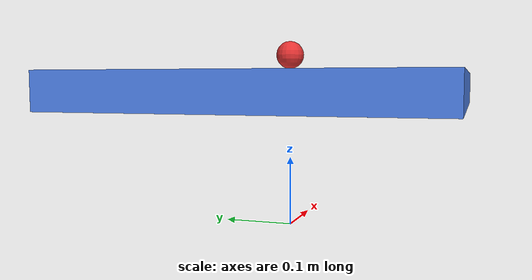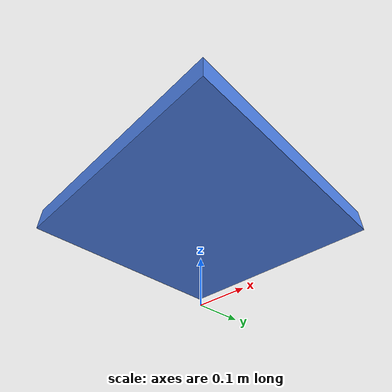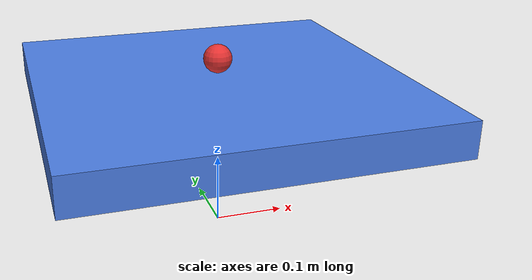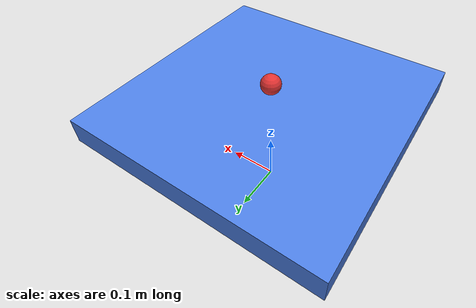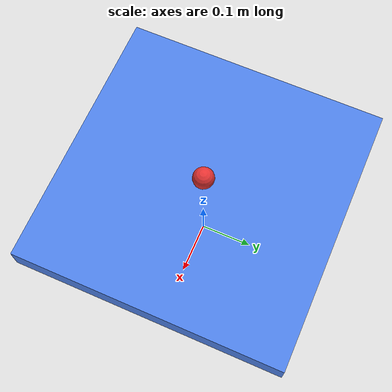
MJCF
<mujoco model="ball_on_plate">

    <option timestep="0.002" gravity="0 0 -9.81"/>

    <worldbody>

        <!-- BASE -->
        <body name="base" pos="0 0 0">

            <!-- ROLL AXIS -->
            <body name="roll_link" pos="0 0 0.2">

                <inertial mass="0.2" pos="0 0 0"
                          diaginertia="0.01 0.01 0.01"/>

                <joint name="roll"
                       type="hinge"
                       axis="0 -1 0"
                       range="-30 30"
                       limited="true"
                       damping="0.05"/>

                <!-- PITCH AXIS -->
                <body name="pitch_link">

                    <inertial mass="0.2" pos="0 0 0"
                              diaginertia="0.01 0.01 0.01"/>

                    <joint name="pitch"
                           type="hinge"
                           axis="1 0 0"
                           range="-30 30"
                           limited="true"
                           damping="0.05"/>

                    <!-- PLATE (MOVING SURFACE) -->
                    <body name="plate_body">

                        <geom name="plate"
                              type="box"
                              size="0.25 0.25 0.025"
                              mass="10.0"
                              rgba="0.3 0.5 0.9 1"
                              friction="1.0 0.01 0.001"/>

                    </body>

                </body>

            </body>

        </body>

        <!-- BALL (WORLD FRAME) -->
        <body name="ball" pos="0 0 0.25">

            <freejoint name="ball_joint"/>

            <geom name="ball_geom"
                  type="sphere"
                  size="0.02"
                  mass="0.05"
                  rgba="0.9 0.2 0.2 1"

                  friction="0.5 0.01 0.0005"

                  solref="0.02 1"
                  solimp="0.9 0.95 0.001"/>

        </body>

    </worldbody>

    <!-- ACTUATION -->
    <actuator>

        <motor name="roll_motor"
               joint="roll"
               gear="8"/>

        <motor name="pitch_motor"
               joint="pitch"
               gear="8"/>

    </actuator>

</mujoco>
